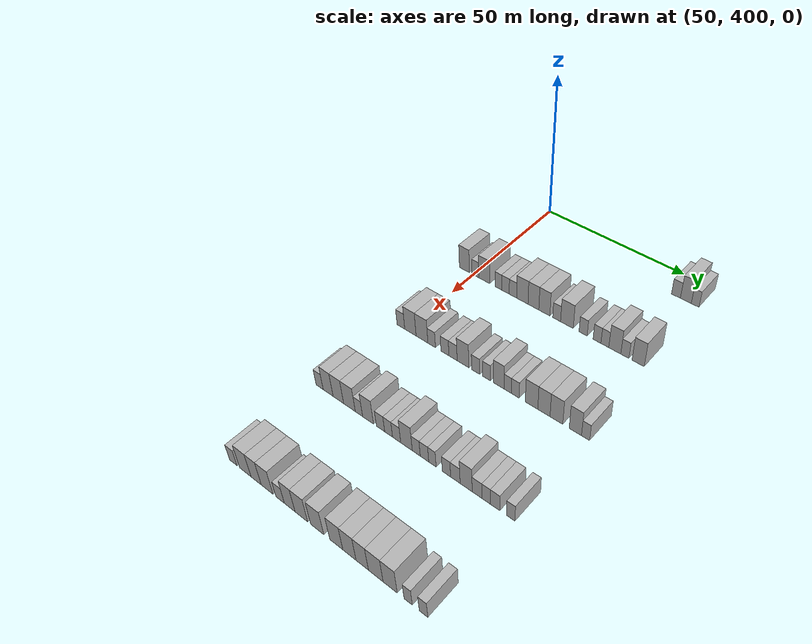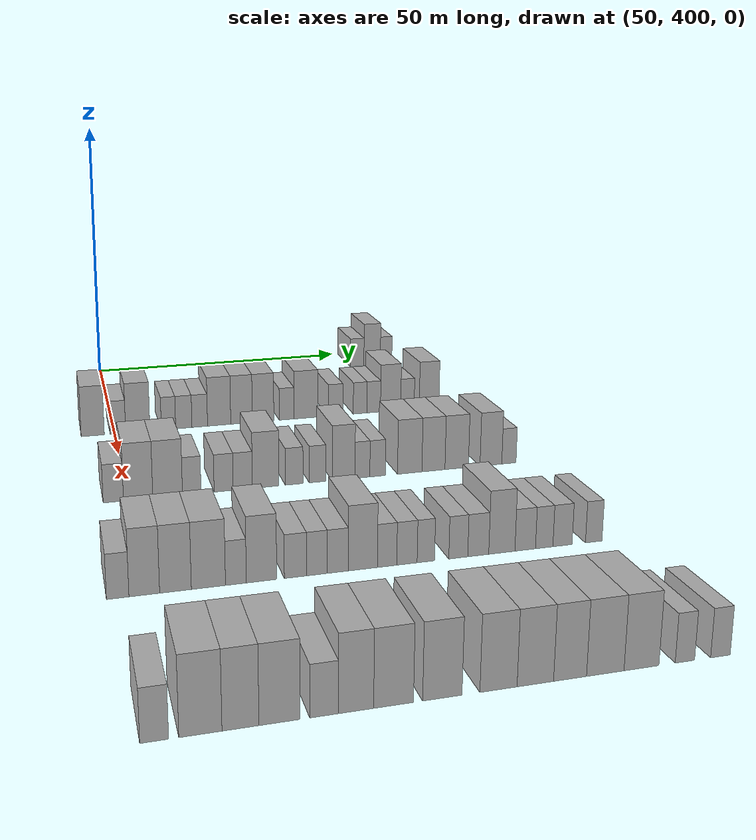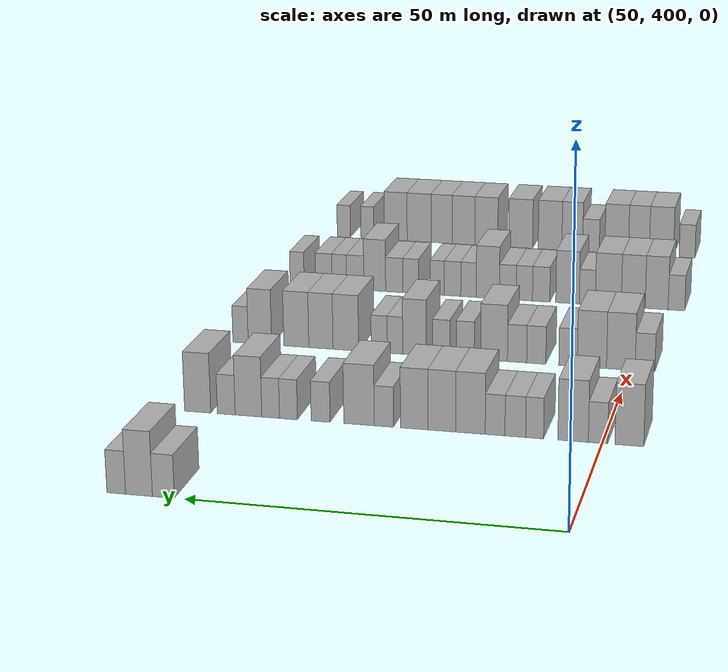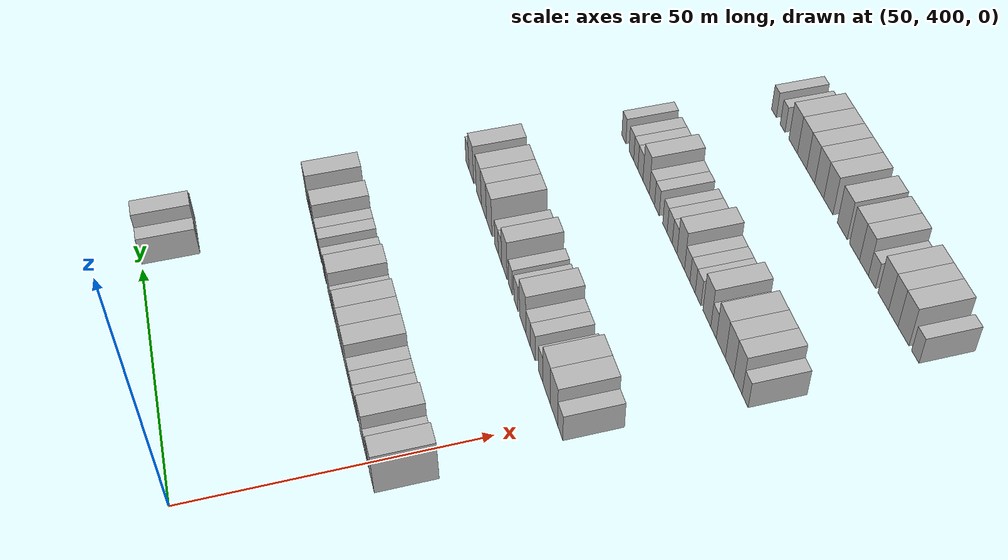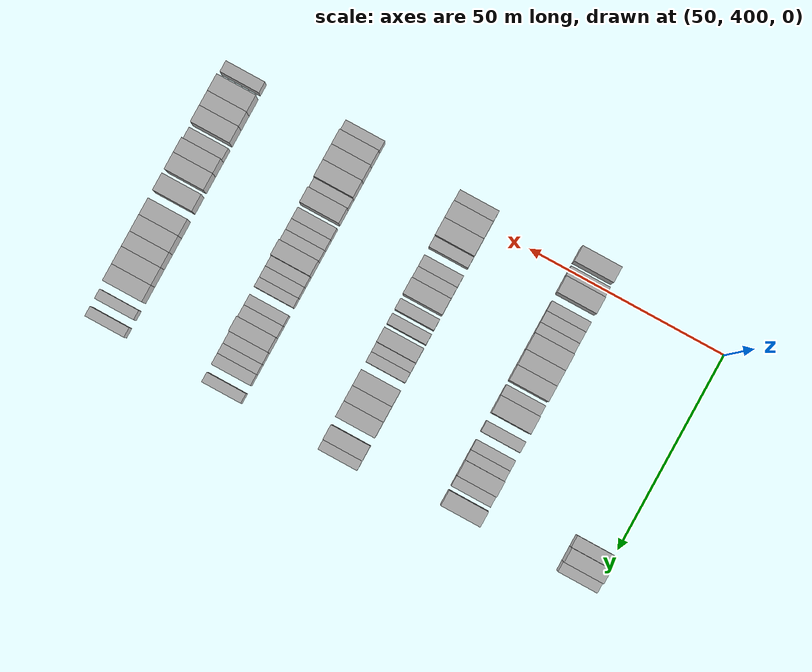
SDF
<sdf version="1.6">
 <world name="default">
  <model name="building_455">
   <static>1</static>
   <pose>55.0000 452.8840 0 0.000000 0.000000 0.000000</pose>
   <link name="link">
    <pose>0 0 3.00 0 0 0</pose>
    <collision name="collision"><geometry><box><size>10.0000 2.9763 6.0000</size></box></geometry></collision>
    <visual name="visual">
     <cast_shadows>0</cast_shadows>
     <geometry><box><size>10.0000 2.9763 6.0000</size></box></geometry>
     <material>
      <script>
       <uri>model://HANNAS_wall/materials/scripts</uri>
       <uri>model://HANNAS_wall/materials/textures</uri>
       <name>vrc/HANNAS_wall</name>
      </script>
     </material>
    </visual>
   </link>
  </model>
  <model name="building_456">
   <static>1</static>
   <pose>55.0000 456.1974 0 0.000000 0.000000 0.000000</pose>
   <link name="link">
    <pose>0 0 4.50 0 0 0</pose>
    <collision name="collision"><geometry><box><size>10.0000 3.6505 9.0000</size></box></geometry></collision>
    <visual name="visual">
     <cast_shadows>0</cast_shadows>
     <geometry><box><size>10.0000 3.6505 9.0000</size></box></geometry>
     <material>
      <script>
       <uri>model://HANNAS_wall/materials/scripts</uri>
       <uri>model://HANNAS_wall/materials/textures</uri>
       <name>vrc/HANNAS_wall</name>
      </script>
     </material>
    </visual>
   </link>
  </model>
  <model name="building_457">
   <static>1</static>
   <pose>55.0000 459.3004 0 0.000000 0.000000 0.000000</pose>
   <link name="link">
    <pose>0 0 3.00 0 0 0</pose>
    <collision name="collision"><geometry><box><size>10.0000 2.5554 6.0000</size></box></geometry></collision>
    <visual name="visual">
     <cast_shadows>0</cast_shadows>
     <geometry><box><size>10.0000 2.5554 6.0000</size></box></geometry>
     <material>
      <script>
       <uri>model://HANNAS_wall/materials/scripts</uri>
       <uri>model://HANNAS_wall/materials/textures</uri>
       <name>vrc/HANNAS_wall</name>
      </script>
     </material>
    </visual>
   </link>
  </model>
  <model name="building_666">
   <static>1</static>
   <pose>85.0000 396.3126 0 0.000000 0.000000 0.000000</pose>
   <link name="link">
    <pose>0 0 4.50 0 0 0</pose>
    <collision name="collision"><geometry><box><size>10.0000 3.9730 9.0000</size></box></geometry></collision>
    <visual name="visual">
     <cast_shadows>0</cast_shadows>
     <geometry><box><size>10.0000 3.9730 9.0000</size></box></geometry>
     <material>
      <script>
       <uri>model://HANNAS_wall/materials/scripts</uri>
       <uri>model://HANNAS_wall/materials/textures</uri>
       <name>vrc/HANNAS_wall</name>
      </script>
     </material>
    </visual>
   </link>
  </model>
  <model name="building_667">
   <static>1</static>
   <pose>85.0000 400.6396 0 0.000000 0.000000 0.000000</pose>
   <link name="link">
    <pose>0 0 3.00 0 0 0</pose>
    <collision name="collision"><geometry><box><size>10.0000 2.6809 6.0000</size></box></geometry></collision>
    <visual name="visual">
     <cast_shadows>0</cast_shadows>
     <geometry><box><size>10.0000 2.6809 6.0000</size></box></geometry>
     <material>
      <script>
       <uri>model://HANNAS_wall/materials/scripts</uri>
       <uri>model://HANNAS_wall/materials/textures</uri>
       <name>vrc/HANNAS_wall</name>
      </script>
     </material>
    </visual>
   </link>
  </model>
  <model name="building_668">
   <static>1</static>
   <pose>85.0000 404.0956 0 0.000000 0.000000 0.000000</pose>
   <link name="link">
    <pose>0 0 4.50 0 0 0</pose>
    <collision name="collision"><geometry><box><size>10.0000 4.2312 9.0000</size></box></geometry></collision>
    <visual name="visual">
     <cast_shadows>0</cast_shadows>
     <geometry><box><size>10.0000 4.2312 9.0000</size></box></geometry>
     <material>
      <script>
       <uri>model://HANNAS_wall/materials/scripts</uri>
       <uri>model://HANNAS_wall/materials/textures</uri>
       <name>vrc/HANNAS_wall</name>
      </script>
     </material>
    </visual>
   </link>
  </model>
  <model name="building_669">
   <static>1</static>
   <pose>85.0000 409.4728 0 0.000000 0.000000 0.000000</pose>
   <link name="link">
    <pose>0 0 3.00 0 0 0</pose>
    <collision name="collision"><geometry><box><size>10.0000 2.5232 6.0000</size></box></geometry></collision>
    <visual name="visual">
     <cast_shadows>0</cast_shadows>
     <geometry><box><size>10.0000 2.5232 6.0000</size></box></geometry>
     <material>
      <script>
       <uri>model://HANNAS_wall/materials/scripts</uri>
       <uri>model://HANNAS_wall/materials/textures</uri>
       <name>vrc/HANNAS_wall</name>
      </script>
     </material>
    </visual>
   </link>
  </model>
  <model name="building_670">
   <static>1</static>
   <pose>85.0000 412.1838 0 0.000000 0.000000 0.000000</pose>
   <link name="link">
    <pose>0 0 3.00 0 0 0</pose>
    <collision name="collision"><geometry><box><size>10.0000 2.8987 6.0000</size></box></geometry></collision>
    <visual name="visual">
     <cast_shadows>0</cast_shadows>
     <geometry><box><size>10.0000 2.8987 6.0000</size></box></geometry>
     <material>
      <script>
       <uri>model://HANNAS_wall/materials/scripts</uri>
       <uri>model://HANNAS_wall/materials/textures</uri>
       <name>vrc/HANNAS_wall</name>
      </script>
     </material>
    </visual>
   </link>
  </model>
  <model name="building_671">
   <static>1</static>
   <pose>85.0000 415.0270 0 0.000000 0.000000 0.000000</pose>
   <link name="link">
    <pose>0 0 3.00 0 0 0</pose>
    <collision name="collision"><geometry><box><size>10.0000 2.7877 6.0000</size></box></geometry></collision>
    <visual name="visual">
     <cast_shadows>0</cast_shadows>
     <geometry><box><size>10.0000 2.7877 6.0000</size></box></geometry>
     <material>
      <script>
       <uri>model://HANNAS_wall/materials/scripts</uri>
       <uri>model://HANNAS_wall/materials/textures</uri>
       <name>vrc/HANNAS_wall</name>
      </script>
     </material>
    </visual>
   </link>
  </model>
  <model name="building_672">
   <static>1</static>
   <pose>85.0000 418.5175 0 0.000000 0.000000 0.000000</pose>
   <link name="link">
    <pose>0 0 4.50 0 0 0</pose>
    <collision name="collision"><geometry><box><size>10.0000 4.1933 9.0000</size></box></geometry></collision>
    <visual name="visual">
     <cast_shadows>0</cast_shadows>
     <geometry><box><size>10.0000 4.1933 9.0000</size></box></geometry>
     <material>
      <script>
       <uri>model://HANNAS_wall/materials/scripts</uri>
       <uri>model://HANNAS_wall/materials/textures</uri>
       <name>vrc/HANNAS_wall</name>
      </script>
     </material>
    </visual>
   </link>
  </model>
  <model name="building_673">
   <static>1</static>
   <pose>85.0000 422.5801 0 0.000000 0.000000 0.000000</pose>
   <link name="link">
    <pose>0 0 4.50 0 0 0</pose>
    <collision name="collision"><geometry><box><size>10.0000 3.9321 9.0000</size></box></geometry></collision>
    <visual name="visual">
     <cast_shadows>0</cast_shadows>
     <geometry><box><size>10.0000 3.9321 9.0000</size></box></geometry>
     <material>
      <script>
       <uri>model://HANNAS_wall/materials/scripts</uri>
       <uri>model://HANNAS_wall/materials/textures</uri>
       <name>vrc/HANNAS_wall</name>
      </script>
     </material>
    </visual>
   </link>
  </model>
  <model name="building_674">
   <static>1</static>
   <pose>85.0000 426.5261 0 0.000000 0.000000 0.000000</pose>
   <link name="link">
    <pose>0 0 4.50 0 0 0</pose>
    <collision name="collision"><geometry><box><size>10.0000 3.9597 9.0000</size></box></geometry></collision>
    <visual name="visual">
     <cast_shadows>0</cast_shadows>
     <geometry><box><size>10.0000 3.9597 9.0000</size></box></geometry>
     <material>
      <script>
       <uri>model://HANNAS_wall/materials/scripts</uri>
       <uri>model://HANNAS_wall/materials/textures</uri>
       <name>vrc/HANNAS_wall</name>
      </script>
     </material>
    </visual>
   </link>
  </model>
  <model name="building_675">
   <static>1</static>
   <pose>85.0000 430.8857 0 0.000000 0.000000 0.000000</pose>
   <link name="link">
    <pose>0 0 3.00 0 0 0</pose>
    <collision name="collision"><geometry><box><size>10.0000 2.7595 6.0000</size></box></geometry></collision>
    <visual name="visual">
     <cast_shadows>0</cast_shadows>
     <geometry><box><size>10.0000 2.7595 6.0000</size></box></geometry>
     <material>
      <script>
       <uri>model://HANNAS_wall/materials/scripts</uri>
       <uri>model://HANNAS_wall/materials/textures</uri>
       <name>vrc/HANNAS_wall</name>
      </script>
     </material>
    </visual>
   </link>
  </model>
  <model name="building_676">
   <static>1</static>
   <pose>85.0000 434.4790 0 0.000000 0.000000 0.000000</pose>
   <link name="link">
    <pose>0 0 4.50 0 0 0</pose>
    <collision name="collision"><geometry><box><size>10.0000 4.4272 9.0000</size></box></geometry></collision>
    <visual name="visual">
     <cast_shadows>0</cast_shadows>
     <geometry><box><size>10.0000 4.4272 9.0000</size></box></geometry>
     <material>
      <script>
       <uri>model://HANNAS_wall/materials/scripts</uri>
       <uri>model://HANNAS_wall/materials/textures</uri>
       <name>vrc/HANNAS_wall</name>
      </script>
     </material>
    </visual>
   </link>
  </model>
  <model name="building_677">
   <static>1</static>
   <pose>85.0000 440.0738 0 0.000000 0.000000 0.000000</pose>
   <link name="link">
    <pose>0 0 3.00 0 0 0</pose>
    <collision name="collision"><geometry><box><size>10.0000 2.7624 6.0000</size></box></geometry></collision>
    <visual name="visual">
     <cast_shadows>0</cast_shadows>
     <geometry><box><size>10.0000 2.7624 6.0000</size></box></geometry>
     <material>
      <script>
       <uri>model://HANNAS_wall/materials/scripts</uri>
       <uri>model://HANNAS_wall/materials/textures</uri>
       <name>vrc/HANNAS_wall</name>
      </script>
     </material>
    </visual>
   </link>
  </model>
  <model name="building_678">
   <static>1</static>
   <pose>85.0000 444.7727 0 0.000000 0.000000 0.000000</pose>
   <link name="link">
    <pose>0 0 3.00 0 0 0</pose>
    <collision name="collision"><geometry><box><size>10.0000 2.6354 6.0000</size></box></geometry></collision>
    <visual name="visual">
     <cast_shadows>0</cast_shadows>
     <geometry><box><size>10.0000 2.6354 6.0000</size></box></geometry>
     <material>
      <script>
       <uri>model://HANNAS_wall/materials/scripts</uri>
       <uri>model://HANNAS_wall/materials/textures</uri>
       <name>vrc/HANNAS_wall</name>
      </script>
     </material>
    </visual>
   </link>
  </model>
  <model name="building_679">
   <static>1</static>
   <pose>85.0000 447.3933 0 0.000000 0.000000 0.000000</pose>
   <link name="link">
    <pose>0 0 3.00 0 0 0</pose>
    <collision name="collision"><geometry><box><size>10.0000 2.6059 6.0000</size></box></geometry></collision>
    <visual name="visual">
     <cast_shadows>0</cast_shadows>
     <geometry><box><size>10.0000 2.6059 6.0000</size></box></geometry>
     <material>
      <script>
       <uri>model://HANNAS_wall/materials/scripts</uri>
       <uri>model://HANNAS_wall/materials/textures</uri>
       <name>vrc/HANNAS_wall</name>
      </script>
     </material>
    </visual>
   </link>
  </model>
  <model name="building_680">
   <static>1</static>
   <pose>85.0000 450.6686 0 0.000000 0.000000 0.000000</pose>
   <link name="link">
    <pose>0 0 4.50 0 0 0</pose>
    <collision name="collision"><geometry><box><size>10.0000 3.9449 9.0000</size></box></geometry></collision>
    <visual name="visual">
     <cast_shadows>0</cast_shadows>
     <geometry><box><size>10.0000 3.9449 9.0000</size></box></geometry>
     <material>
      <script>
       <uri>model://HANNAS_wall/materials/scripts</uri>
       <uri>model://HANNAS_wall/materials/textures</uri>
       <name>vrc/HANNAS_wall</name>
      </script>
     </material>
    </visual>
   </link>
  </model>
  <model name="building_681">
   <static>1</static>
   <pose>85.0000 453.9613 0 0.000000 0.000000 0.000000</pose>
   <link name="link">
    <pose>0 0 3.00 0 0 0</pose>
    <collision name="collision"><geometry><box><size>10.0000 2.6404 6.0000</size></box></geometry></collision>
    <visual name="visual">
     <cast_shadows>0</cast_shadows>
     <geometry><box><size>10.0000 2.6404 6.0000</size></box></geometry>
     <material>
      <script>
       <uri>model://HANNAS_wall/materials/scripts</uri>
       <uri>model://HANNAS_wall/materials/textures</uri>
       <name>vrc/HANNAS_wall</name>
      </script>
     </material>
    </visual>
   </link>
  </model>
  <model name="building_682">
   <static>1</static>
   <pose>85.0000 458.2292 0 0.000000 0.000000 0.000000</pose>
   <link name="link">
    <pose>0 0 4.50 0 0 0</pose>
    <collision name="collision"><geometry><box><size>10.0000 3.8955 9.0000</size></box></geometry></collision>
    <visual name="visual">
     <cast_shadows>0</cast_shadows>
     <geometry><box><size>10.0000 3.8955 9.0000</size></box></geometry>
     <material>
      <script>
       <uri>model://HANNAS_wall/materials/scripts</uri>
       <uri>model://HANNAS_wall/materials/textures</uri>
       <name>vrc/HANNAS_wall</name>
      </script>
     </material>
    </visual>
   </link>
  </model>
  <model name="building_903">
   <static>1</static>
   <pose>115.0000 397.7555 0 0.000000 0.000000 0.000000</pose>
   <link name="link">
    <pose>0 0 3.00 0 0 0</pose>
    <collision name="collision"><geometry><box><size>10.0000 2.9889 6.0000</size></box></geometry></collision>
    <visual name="visual">
     <cast_shadows>0</cast_shadows>
     <geometry><box><size>10.0000 2.9889 6.0000</size></box></geometry>
     <material>
      <script>
       <uri>model://HANNAS_wall/materials/scripts</uri>
       <uri>model://HANNAS_wall/materials/textures</uri>
       <name>vrc/HANNAS_wall</name>
      </script>
     </material>
    </visual>
   </link>
  </model>
  <model name="building_904">
   <static>1</static>
   <pose>115.0000 401.4239 0 0.000000 0.000000 0.000000</pose>
   <link name="link">
    <pose>0 0 4.50 0 0 0</pose>
    <collision name="collision"><geometry><box><size>10.0000 4.3480 9.0000</size></box></geometry></collision>
    <visual name="visual">
     <cast_shadows>0</cast_shadows>
     <geometry><box><size>10.0000 4.3480 9.0000</size></box></geometry>
     <material>
      <script>
       <uri>model://HANNAS_wall/materials/scripts</uri>
       <uri>model://HANNAS_wall/materials/textures</uri>
       <name>vrc/HANNAS_wall</name>
      </script>
     </material>
    </visual>
   </link>
  </model>
  <model name="building_905">
   <static>1</static>
   <pose>115.0000 405.8273 0 0.000000 0.000000 0.000000</pose>
   <link name="link">
    <pose>0 0 4.50 0 0 0</pose>
    <collision name="collision"><geometry><box><size>10.0000 4.4589 9.0000</size></box></geometry></collision>
    <visual name="visual">
     <cast_shadows>0</cast_shadows>
     <geometry><box><size>10.0000 4.4589 9.0000</size></box></geometry>
     <material>
      <script>
       <uri>model://HANNAS_wall/materials/scripts</uri>
       <uri>model://HANNAS_wall/materials/textures</uri>
       <name>vrc/HANNAS_wall</name>
      </script>
     </material>
    </visual>
   </link>
  </model>
  <model name="building_906">
   <static>1</static>
   <pose>115.0000 409.4666 0 0.000000 0.000000 0.000000</pose>
   <link name="link">
    <pose>0 0 3.00 0 0 0</pose>
    <collision name="collision"><geometry><box><size>10.0000 2.8197 6.0000</size></box></geometry></collision>
    <visual name="visual">
     <cast_shadows>0</cast_shadows>
     <geometry><box><size>10.0000 2.8197 6.0000</size></box></geometry>
     <material>
      <script>
       <uri>model://HANNAS_wall/materials/scripts</uri>
       <uri>model://HANNAS_wall/materials/textures</uri>
       <name>vrc/HANNAS_wall</name>
      </script>
     </material>
    </visual>
   </link>
  </model>
  <model name="building_907">
   <static>1</static>
   <pose>115.0000 414.3452 0 0.000000 0.000000 0.000000</pose>
   <link name="link">
    <pose>0 0 3.00 0 0 0</pose>
    <collision name="collision"><geometry><box><size>10.0000 2.9374 6.0000</size></box></geometry></collision>
    <visual name="visual">
     <cast_shadows>0</cast_shadows>
     <geometry><box><size>10.0000 2.9374 6.0000</size></box></geometry>
     <material>
      <script>
       <uri>model://HANNAS_wall/materials/scripts</uri>
       <uri>model://HANNAS_wall/materials/textures</uri>
       <name>vrc/HANNAS_wall</name>
      </script>
     </material>
    </visual>
   </link>
  </model>
  <model name="building_908">
   <static>1</static>
   <pose>115.0000 417.3029 0 0.000000 0.000000 0.000000</pose>
   <link name="link">
    <pose>0 0 3.00 0 0 0</pose>
    <collision name="collision"><geometry><box><size>10.0000 2.9780 6.0000</size></box></geometry></collision>
    <visual name="visual">
     <cast_shadows>0</cast_shadows>
     <geometry><box><size>10.0000 2.9780 6.0000</size></box></geometry>
     <material>
      <script>
       <uri>model://HANNAS_wall/materials/scripts</uri>
       <uri>model://HANNAS_wall/materials/textures</uri>
       <name>vrc/HANNAS_wall</name>
      </script>
     </material>
    </visual>
   </link>
  </model>
  <model name="building_909">
   <static>1</static>
   <pose>115.0000 420.8757 0 0.000000 0.000000 0.000000</pose>
   <link name="link">
    <pose>0 0 4.50 0 0 0</pose>
    <collision name="collision"><geometry><box><size>10.0000 4.1677 9.0000</size></box></geometry></collision>
    <visual name="visual">
     <cast_shadows>0</cast_shadows>
     <geometry><box><size>10.0000 4.1677 9.0000</size></box></geometry>
     <material>
      <script>
       <uri>model://HANNAS_wall/materials/scripts</uri>
       <uri>model://HANNAS_wall/materials/textures</uri>
       <name>vrc/HANNAS_wall</name>
      </script>
     </material>
    </visual>
   </link>
  </model>
  <model name="building_910">
   <static>1</static>
   <pose>115.0000 425.3671 0 0.000000 0.000000 0.000000</pose>
   <link name="link">
    <pose>0 0 3.00 0 0 0</pose>
    <collision name="collision"><geometry><box><size>10.0000 2.8151 6.0000</size></box></geometry></collision>
    <visual name="visual">
     <cast_shadows>0</cast_shadows>
     <geometry><box><size>10.0000 2.8151 6.0000</size></box></geometry>
     <material>
      <script>
       <uri>model://HANNAS_wall/materials/scripts</uri>
       <uri>model://HANNAS_wall/materials/textures</uri>
       <name>vrc/HANNAS_wall</name>
      </script>
     </material>
    </visual>
   </link>
  </model>
  <model name="building_911">
   <static>1</static>
   <pose>115.0000 429.1110 0 0.000000 0.000000 0.000000</pose>
   <link name="link">
    <pose>0 0 3.00 0 0 0</pose>
    <collision name="collision"><geometry><box><size>10.0000 2.6728 6.0000</size></box></geometry></collision>
    <visual name="visual">
     <cast_shadows>0</cast_shadows>
     <geometry><box><size>10.0000 2.6728 6.0000</size></box></geometry>
     <material>
      <script>
       <uri>model://HANNAS_wall/materials/scripts</uri>
       <uri>model://HANNAS_wall/materials/textures</uri>
       <name>vrc/HANNAS_wall</name>
      </script>
     </material>
    </visual>
   </link>
  </model>
  <model name="building_912">
   <static>1</static>
   <pose>115.0000 433.3082 0 0.000000 0.000000 0.000000</pose>
   <link name="link">
    <pose>0 0 4.50 0 0 0</pose>
    <collision name="collision"><geometry><box><size>10.0000 3.7215 9.0000</size></box></geometry></collision>
    <visual name="visual">
     <cast_shadows>0</cast_shadows>
     <geometry><box><size>10.0000 3.7215 9.0000</size></box></geometry>
     <material>
      <script>
       <uri>model://HANNAS_wall/materials/scripts</uri>
       <uri>model://HANNAS_wall/materials/textures</uri>
       <name>vrc/HANNAS_wall</name>
      </script>
     </material>
    </visual>
   </link>
  </model>
  <model name="building_913">
   <static>1</static>
   <pose>115.0000 436.3784 0 0.000000 0.000000 0.000000</pose>
   <link name="link">
    <pose>0 0 3.00 0 0 0</pose>
    <collision name="collision"><geometry><box><size>10.0000 2.4189 6.0000</size></box></geometry></collision>
    <visual name="visual">
     <cast_shadows>0</cast_shadows>
     <geometry><box><size>10.0000 2.4189 6.0000</size></box></geometry>
     <material>
      <script>
       <uri>model://HANNAS_wall/materials/scripts</uri>
       <uri>model://HANNAS_wall/materials/textures</uri>
       <name>vrc/HANNAS_wall</name>
      </script>
     </material>
    </visual>
   </link>
  </model>
  <model name="building_914">
   <static>1</static>
   <pose>115.0000 438.8749 0 0.000000 0.000000 0.000000</pose>
   <link name="link">
    <pose>0 0 3.00 0 0 0</pose>
    <collision name="collision"><geometry><box><size>10.0000 2.5742 6.0000</size></box></geometry></collision>
    <visual name="visual">
     <cast_shadows>0</cast_shadows>
     <geometry><box><size>10.0000 2.5742 6.0000</size></box></geometry>
     <material>
      <script>
       <uri>model://HANNAS_wall/materials/scripts</uri>
       <uri>model://HANNAS_wall/materials/textures</uri>
       <name>vrc/HANNAS_wall</name>
      </script>
     </material>
    </visual>
   </link>
  </model>
  <model name="building_915">
   <static>1</static>
   <pose>115.0000 444.2015 0 0.000000 0.000000 0.000000</pose>
   <link name="link">
    <pose>0 0 4.50 0 0 0</pose>
    <collision name="collision"><geometry><box><size>10.0000 4.0790 9.0000</size></box></geometry></collision>
    <visual name="visual">
     <cast_shadows>0</cast_shadows>
     <geometry><box><size>10.0000 4.0790 9.0000</size></box></geometry>
     <material>
      <script>
       <uri>model://HANNAS_wall/materials/scripts</uri>
       <uri>model://HANNAS_wall/materials/textures</uri>
       <name>vrc/HANNAS_wall</name>
      </script>
     </material>
    </visual>
   </link>
  </model>
  <model name="building_916">
   <static>1</static>
   <pose>115.0000 448.1907 0 0.000000 0.000000 0.000000</pose>
   <link name="link">
    <pose>0 0 4.50 0 0 0</pose>
    <collision name="collision"><geometry><box><size>10.0000 3.8994 9.0000</size></box></geometry></collision>
    <visual name="visual">
     <cast_shadows>0</cast_shadows>
     <geometry><box><size>10.0000 3.8994 9.0000</size></box></geometry>
     <material>
      <script>
       <uri>model://HANNAS_wall/materials/scripts</uri>
       <uri>model://HANNAS_wall/materials/textures</uri>
       <name>vrc/HANNAS_wall</name>
      </script>
     </material>
    </visual>
   </link>
  </model>
  <model name="building_917">
   <static>1</static>
   <pose>115.0000 452.1429 0 0.000000 0.000000 0.000000</pose>
   <link name="link">
    <pose>0 0 4.50 0 0 0</pose>
    <collision name="collision"><geometry><box><size>10.0000 4.0049 9.0000</size></box></geometry></collision>
    <visual name="visual">
     <cast_shadows>0</cast_shadows>
     <geometry><box><size>10.0000 4.0049 9.0000</size></box></geometry>
     <material>
      <script>
       <uri>model://HANNAS_wall/materials/scripts</uri>
       <uri>model://HANNAS_wall/materials/textures</uri>
       <name>vrc/HANNAS_wall</name>
      </script>
     </material>
    </visual>
   </link>
  </model>
  <model name="building_918">
   <static>1</static>
   <pose>115.0000 458.0374 0 0.000000 0.000000 0.000000</pose>
   <link name="link">
    <pose>0 0 4.50 0 0 0</pose>
    <collision name="collision"><geometry><box><size>10.0000 3.7840 9.0000</size></box></geometry></collision>
    <visual name="visual">
     <cast_shadows>0</cast_shadows>
     <geometry><box><size>10.0000 3.7840 9.0000</size></box></geometry>
     <material>
      <script>
       <uri>model://HANNAS_wall/materials/scripts</uri>
       <uri>model://HANNAS_wall/materials/textures</uri>
       <name>vrc/HANNAS_wall</name>
      </script>
     </material>
    </visual>
   </link>
  </model>
  <model name="building_919">
   <static>1</static>
   <pose>115.0000 461.1777 0 0.000000 0.000000 0.000000</pose>
   <link name="link">
    <pose>0 0 3.00 0 0 0</pose>
    <collision name="collision"><geometry><box><size>10.0000 2.4967 6.0000</size></box></geometry></collision>
    <visual name="visual">
     <cast_shadows>0</cast_shadows>
     <geometry><box><size>10.0000 2.4967 6.0000</size></box></geometry>
     <material>
      <script>
       <uri>model://HANNAS_wall/materials/scripts</uri>
       <uri>model://HANNAS_wall/materials/textures</uri>
       <name>vrc/HANNAS_wall</name>
      </script>
     </material>
    </visual>
   </link>
  </model>
  <model name="building_1120">
   <static>1</static>
   <pose>145.0000 396.1927 0 0.000000 0.000000 0.000000</pose>
   <link name="link">
    <pose>0 0 3.00 0 0 0</pose>
    <collision name="collision"><geometry><box><size>10.0000 2.7344 6.0000</size></box></geometry></collision>
    <visual name="visual">
     <cast_shadows>0</cast_shadows>
     <geometry><box><size>10.0000 2.7344 6.0000</size></box></geometry>
     <material>
      <script>
       <uri>model://HANNAS_wall/materials/scripts</uri>
       <uri>model://HANNAS_wall/materials/textures</uri>
       <name>vrc/HANNAS_wall</name>
      </script>
     </material>
    </visual>
   </link>
  </model>
  <model name="building_1121">
   <static>1</static>
   <pose>145.0000 399.4441 0 0.000000 0.000000 0.000000</pose>
   <link name="link">
    <pose>0 0 4.50 0 0 0</pose>
    <collision name="collision"><geometry><box><size>10.0000 3.7683 9.0000</size></box></geometry></collision>
    <visual name="visual">
     <cast_shadows>0</cast_shadows>
     <geometry><box><size>10.0000 3.7683 9.0000</size></box></geometry>
     <material>
      <script>
       <uri>model://HANNAS_wall/materials/scripts</uri>
       <uri>model://HANNAS_wall/materials/textures</uri>
       <name>vrc/HANNAS_wall</name>
      </script>
     </material>
    </visual>
   </link>
  </model>
  <model name="building_1122">
   <static>1</static>
   <pose>145.0000 403.3025 0 0.000000 0.000000 0.000000</pose>
   <link name="link">
    <pose>0 0 4.50 0 0 0</pose>
    <collision name="collision"><geometry><box><size>10.0000 3.9485 9.0000</size></box></geometry></collision>
    <visual name="visual">
     <cast_shadows>0</cast_shadows>
     <geometry><box><size>10.0000 3.9485 9.0000</size></box></geometry>
     <material>
      <script>
       <uri>model://HANNAS_wall/materials/scripts</uri>
       <uri>model://HANNAS_wall/materials/textures</uri>
       <name>vrc/HANNAS_wall</name>
      </script>
     </material>
    </visual>
   </link>
  </model>
  <model name="building_1123">
   <static>1</static>
   <pose>145.0000 407.4304 0 0.000000 0.000000 0.000000</pose>
   <link name="link">
    <pose>0 0 4.50 0 0 0</pose>
    <collision name="collision"><geometry><box><size>10.0000 4.3072 9.0000</size></box></geometry></collision>
    <visual name="visual">
     <cast_shadows>0</cast_shadows>
     <geometry><box><size>10.0000 4.3072 9.0000</size></box></geometry>
     <material>
      <script>
       <uri>model://HANNAS_wall/materials/scripts</uri>
       <uri>model://HANNAS_wall/materials/textures</uri>
       <name>vrc/HANNAS_wall</name>
      </script>
     </material>
    </visual>
   </link>
  </model>
  <model name="building_1124">
   <static>1</static>
   <pose>145.0000 410.9167 0 0.000000 0.000000 0.000000</pose>
   <link name="link">
    <pose>0 0 3.00 0 0 0</pose>
    <collision name="collision"><geometry><box><size>10.0000 2.6654 6.0000</size></box></geometry></collision>
    <visual name="visual">
     <cast_shadows>0</cast_shadows>
     <geometry><box><size>10.0000 2.6654 6.0000</size></box></geometry>
     <material>
      <script>
       <uri>model://HANNAS_wall/materials/scripts</uri>
       <uri>model://HANNAS_wall/materials/textures</uri>
       <name>vrc/HANNAS_wall</name>
      </script>
     </material>
    </visual>
   </link>
  </model>
  <model name="building_1125">
   <static>1</static>
   <pose>145.0000 414.2074 0 0.000000 0.000000 0.000000</pose>
   <link name="link">
    <pose>0 0 4.50 0 0 0</pose>
    <collision name="collision"><geometry><box><size>10.0000 3.9159 9.0000</size></box></geometry></collision>
    <visual name="visual">
     <cast_shadows>0</cast_shadows>
     <geometry><box><size>10.0000 3.9159 9.0000</size></box></geometry>
     <material>
      <script>
       <uri>model://HANNAS_wall/materials/scripts</uri>
       <uri>model://HANNAS_wall/materials/textures</uri>
       <name>vrc/HANNAS_wall</name>
      </script>
     </material>
    </visual>
   </link>
  </model>
  <model name="building_1126">
   <static>1</static>
   <pose>145.0000 418.6219 0 0.000000 0.000000 0.000000</pose>
   <link name="link">
    <pose>0 0 3.00 0 0 0</pose>
    <collision name="collision"><geometry><box><size>10.0000 2.9131 6.0000</size></box></geometry></collision>
    <visual name="visual">
     <cast_shadows>0</cast_shadows>
     <geometry><box><size>10.0000 2.9131 6.0000</size></box></geometry>
     <material>
      <script>
       <uri>model://HANNAS_wall/materials/scripts</uri>
       <uri>model://HANNAS_wall/materials/textures</uri>
       <name>vrc/HANNAS_wall</name>
      </script>
     </material>
    </visual>
   </link>
  </model>
  <model name="building_1127">
   <static>1</static>
   <pose>145.0000 421.4508 0 0.000000 0.000000 0.000000</pose>
   <link name="link">
    <pose>0 0 3.00 0 0 0</pose>
    <collision name="collision"><geometry><box><size>10.0000 2.7447 6.0000</size></box></geometry></collision>
    <visual name="visual">
     <cast_shadows>0</cast_shadows>
     <geometry><box><size>10.0000 2.7447 6.0000</size></box></geometry>
     <material>
      <script>
       <uri>model://HANNAS_wall/materials/scripts</uri>
       <uri>model://HANNAS_wall/materials/textures</uri>
       <name>vrc/HANNAS_wall</name>
      </script>
     </material>
    </visual>
   </link>
  </model>
  <model name="building_1128">
   <static>1</static>
   <pose>145.0000 424.2250 0 0.000000 0.000000 0.000000</pose>
   <link name="link">
    <pose>0 0 3.00 0 0 0</pose>
    <collision name="collision"><geometry><box><size>10.0000 2.8036 6.0000</size></box></geometry></collision>
    <visual name="visual">
     <cast_shadows>0</cast_shadows>
     <geometry><box><size>10.0000 2.8036 6.0000</size></box></geometry>
     <material>
      <script>
       <uri>model://HANNAS_wall/materials/scripts</uri>
       <uri>model://HANNAS_wall/materials/textures</uri>
       <name>vrc/HANNAS_wall</name>
      </script>
     </material>
    </visual>
   </link>
  </model>
  <model name="building_1129">
   <static>1</static>
   <pose>145.0000 427.5907 0 0.000000 0.000000 0.000000</pose>
   <link name="link">
    <pose>0 0 4.50 0 0 0</pose>
    <collision name="collision"><geometry><box><size>10.0000 3.9279 9.0000</size></box></geometry></collision>
    <visual name="visual">
     <cast_shadows>0</cast_shadows>
     <geometry><box><size>10.0000 3.9279 9.0000</size></box></geometry>
     <material>
      <script>
       <uri>model://HANNAS_wall/materials/scripts</uri>
       <uri>model://HANNAS_wall/materials/textures</uri>
       <name>vrc/HANNAS_wall</name>
      </script>
     </material>
    </visual>
   </link>
  </model>
  <model name="building_1130">
   <static>1</static>
   <pose>145.0000 430.8809 0 0.000000 0.000000 0.000000</pose>
   <link name="link">
    <pose>0 0 3.00 0 0 0</pose>
    <collision name="collision"><geometry><box><size>10.0000 2.6524 6.0000</size></box></geometry></collision>
    <visual name="visual">
     <cast_shadows>0</cast_shadows>
     <geometry><box><size>10.0000 2.6524 6.0000</size></box></geometry>
     <material>
      <script>
       <uri>model://HANNAS_wall/materials/scripts</uri>
       <uri>model://HANNAS_wall/materials/textures</uri>
       <name>vrc/HANNAS_wall</name>
      </script>
     </material>
    </visual>
   </link>
  </model>
  <model name="building_1131">
   <static>1</static>
   <pose>145.0000 433.6108 0 0.000000 0.000000 0.000000</pose>
   <link name="link">
    <pose>0 0 3.00 0 0 0</pose>
    <collision name="collision"><geometry><box><size>10.0000 2.8074 6.0000</size></box></geometry></collision>
    <visual name="visual">
     <cast_shadows>0</cast_shadows>
     <geometry><box><size>10.0000 2.8074 6.0000</size></box></geometry>
     <material>
      <script>
       <uri>model://HANNAS_wall/materials/scripts</uri>
       <uri>model://HANNAS_wall/materials/textures</uri>
       <name>vrc/HANNAS_wall</name>
      </script>
     </material>
    </visual>
   </link>
  </model>
  <model name="building_1132">
   <static>1</static>
   <pose>145.0000 436.2256 0 0.000000 0.000000 0.000000</pose>
   <link name="link">
    <pose>0 0 3.00 0 0 0</pose>
    <collision name="collision"><geometry><box><size>10.0000 2.4221 6.0000</size></box></geometry></collision>
    <visual name="visual">
     <cast_shadows>0</cast_shadows>
     <geometry><box><size>10.0000 2.4221 6.0000</size></box></geometry>
     <material>
      <script>
       <uri>model://HANNAS_wall/materials/scripts</uri>
       <uri>model://HANNAS_wall/materials/textures</uri>
       <name>vrc/HANNAS_wall</name>
      </script>
     </material>
    </visual>
   </link>
  </model>
  <model name="building_1133">
   <static>1</static>
   <pose>145.0000 440.7732 0 0.000000 0.000000 0.000000</pose>
   <link name="link">
    <pose>0 0 3.00 0 0 0</pose>
    <collision name="collision"><geometry><box><size>10.0000 2.6732 6.0000</size></box></geometry></collision>
    <visual name="visual">
     <cast_shadows>0</cast_shadows>
     <geometry><box><size>10.0000 2.6732 6.0000</size></box></geometry>
     <material>
      <script>
       <uri>model://HANNAS_wall/materials/scripts</uri>
       <uri>model://HANNAS_wall/materials/textures</uri>
       <name>vrc/HANNAS_wall</name>
      </script>
     </material>
    </visual>
   </link>
  </model>
  <model name="building_1134">
   <static>1</static>
   <pose>145.0000 443.6060 0 0.000000 0.000000 0.000000</pose>
   <link name="link">
    <pose>0 0 3.00 0 0 0</pose>
    <collision name="collision"><geometry><box><size>10.0000 2.9924 6.0000</size></box></geometry></collision>
    <visual name="visual">
     <cast_shadows>0</cast_shadows>
     <geometry><box><size>10.0000 2.9924 6.0000</size></box></geometry>
     <material>
      <script>
       <uri>model://HANNAS_wall/materials/scripts</uri>
       <uri>model://HANNAS_wall/materials/textures</uri>
       <name>vrc/HANNAS_wall</name>
      </script>
     </material>
    </visual>
   </link>
  </model>
  <model name="building_1135">
   <static>1</static>
   <pose>145.0000 446.9874 0 0.000000 0.000000 0.000000</pose>
   <link name="link">
    <pose>0 0 4.50 0 0 0</pose>
    <collision name="collision"><geometry><box><size>10.0000 3.7703 9.0000</size></box></geometry></collision>
    <visual name="visual">
     <cast_shadows>0</cast_shadows>
     <geometry><box><size>10.0000 3.7703 9.0000</size></box></geometry>
     <material>
      <script>
       <uri>model://HANNAS_wall/materials/scripts</uri>
       <uri>model://HANNAS_wall/materials/textures</uri>
       <name>vrc/HANNAS_wall</name>
      </script>
     </material>
    </visual>
   </link>
  </model>
  <model name="building_1136">
   <static>1</static>
   <pose>145.0000 450.3699 0 0.000000 0.000000 0.000000</pose>
   <link name="link">
    <pose>0 0 3.00 0 0 0</pose>
    <collision name="collision"><geometry><box><size>10.0000 2.9948 6.0000</size></box></geometry></collision>
    <visual name="visual">
     <cast_shadows>0</cast_shadows>
     <geometry><box><size>10.0000 2.9948 6.0000</size></box></geometry>
     <material>
      <script>
       <uri>model://HANNAS_wall/materials/scripts</uri>
       <uri>model://HANNAS_wall/materials/textures</uri>
       <name>vrc/HANNAS_wall</name>
      </script>
     </material>
    </visual>
   </link>
  </model>
  <model name="building_1137">
   <static>1</static>
   <pose>145.0000 453.1490 0 0.000000 0.000000 0.000000</pose>
   <link name="link">
    <pose>0 0 3.00 0 0 0</pose>
    <collision name="collision"><geometry><box><size>10.0000 2.5633 6.0000</size></box></geometry></collision>
    <visual name="visual">
     <cast_shadows>0</cast_shadows>
     <geometry><box><size>10.0000 2.5633 6.0000</size></box></geometry>
     <material>
      <script>
       <uri>model://HANNAS_wall/materials/scripts</uri>
       <uri>model://HANNAS_wall/materials/textures</uri>
       <name>vrc/HANNAS_wall</name>
      </script>
     </material>
    </visual>
   </link>
  </model>
  <model name="building_1138">
   <static>1</static>
   <pose>145.0000 455.8523 0 0.000000 0.000000 0.000000</pose>
   <link name="link">
    <pose>0 0 3.00 0 0 0</pose>
    <collision name="collision"><geometry><box><size>10.0000 2.8433 6.0000</size></box></geometry></collision>
    <visual name="visual">
     <cast_shadows>0</cast_shadows>
     <geometry><box><size>10.0000 2.8433 6.0000</size></box></geometry>
     <material>
      <script>
       <uri>model://HANNAS_wall/materials/scripts</uri>
       <uri>model://HANNAS_wall/materials/textures</uri>
       <name>vrc/HANNAS_wall</name>
      </script>
     </material>
    </visual>
   </link>
  </model>
  <model name="building_1139">
   <static>1</static>
   <pose>145.0000 460.5141 0 0.000000 0.000000 0.000000</pose>
   <link name="link">
    <pose>0 0 3.00 0 0 0</pose>
    <collision name="collision"><geometry><box><size>10.0000 2.4802 6.0000</size></box></geometry></collision>
    <visual name="visual">
     <cast_shadows>0</cast_shadows>
     <geometry><box><size>10.0000 2.4802 6.0000</size></box></geometry>
     <material>
      <script>
       <uri>model://HANNAS_wall/materials/scripts</uri>
       <uri>model://HANNAS_wall/materials/textures</uri>
       <name>vrc/HANNAS_wall</name>
      </script>
     </material>
    </visual>
   </link>
  </model>
  <model name="building_1348">
   <static>1</static>
   <pose>175.0000 397.5068 0 0.000000 0.000000 0.000000</pose>
   <link name="link">
    <pose>0 0 3.00 0 0 0</pose>
    <collision name="collision"><geometry><box><size>10.0000 2.8135 6.0000</size></box></geometry></collision>
    <visual name="visual">
     <cast_shadows>0</cast_shadows>
     <geometry><box><size>10.0000 2.8135 6.0000</size></box></geometry>
     <material>
      <script>
       <uri>model://HANNAS_wall/materials/scripts</uri>
       <uri>model://HANNAS_wall/materials/textures</uri>
       <name>vrc/HANNAS_wall</name>
      </script>
     </material>
    </visual>
   </link>
  </model>
  <model name="building_1349">
   <static>1</static>
   <pose>175.0000 402.0545 0 0.000000 0.000000 0.000000</pose>
   <link name="link">
    <pose>0 0 4.50 0 0 0</pose>
    <collision name="collision"><geometry><box><size>10.0000 4.2819 9.0000</size></box></geometry></collision>
    <visual name="visual">
     <cast_shadows>0</cast_shadows>
     <geometry><box><size>10.0000 4.2819 9.0000</size></box></geometry>
     <material>
      <script>
       <uri>model://HANNAS_wall/materials/scripts</uri>
       <uri>model://HANNAS_wall/materials/textures</uri>
       <name>vrc/HANNAS_wall</name>
      </script>
     </material>
    </visual>
   </link>
  </model>
  <model name="building_1350">
   <static>1</static>
   <pose>175.0000 406.0598 0 0.000000 0.000000 0.000000</pose>
   <link name="link">
    <pose>0 0 4.50 0 0 0</pose>
    <collision name="collision"><geometry><box><size>10.0000 3.7287 9.0000</size></box></geometry></collision>
    <visual name="visual">
     <cast_shadows>0</cast_shadows>
     <geometry><box><size>10.0000 3.7287 9.0000</size></box></geometry>
     <material>
      <script>
       <uri>model://HANNAS_wall/materials/scripts</uri>
       <uri>model://HANNAS_wall/materials/textures</uri>
       <name>vrc/HANNAS_wall</name>
      </script>
     </material>
    </visual>
   </link>
  </model>
  <model name="building_1351">
   <static>1</static>
   <pose>175.0000 410.0366 0 0.000000 0.000000 0.000000</pose>
   <link name="link">
    <pose>0 0 4.50 0 0 0</pose>
    <collision name="collision"><geometry><box><size>10.0000 4.2249 9.0000</size></box></geometry></collision>
    <visual name="visual">
     <cast_shadows>0</cast_shadows>
     <geometry><box><size>10.0000 4.2249 9.0000</size></box></geometry>
     <material>
      <script>
       <uri>model://HANNAS_wall/materials/scripts</uri>
       <uri>model://HANNAS_wall/materials/textures</uri>
       <name>vrc/HANNAS_wall</name>
      </script>
     </material>
    </visual>
   </link>
  </model>
  <model name="building_1352">
   <static>1</static>
   <pose>175.0000 414.6485 0 0.000000 0.000000 0.000000</pose>
   <link name="link">
    <pose>0 0 3.00 0 0 0</pose>
    <collision name="collision"><geometry><box><size>10.0000 2.9989 6.0000</size></box></geometry></collision>
    <visual name="visual">
     <cast_shadows>0</cast_shadows>
     <geometry><box><size>10.0000 2.9989 6.0000</size></box></geometry>
     <material>
      <script>
       <uri>model://HANNAS_wall/materials/scripts</uri>
       <uri>model://HANNAS_wall/materials/textures</uri>
       <name>vrc/HANNAS_wall</name>
      </script>
     </material>
    </visual>
   </link>
  </model>
  <model name="building_1353">
   <static>1</static>
   <pose>175.0000 418.0206 0 0.000000 0.000000 0.000000</pose>
   <link name="link">
    <pose>0 0 4.50 0 0 0</pose>
    <collision name="collision"><geometry><box><size>10.0000 3.7453 9.0000</size></box></geometry></collision>
    <visual name="visual">
     <cast_shadows>0</cast_shadows>
     <geometry><box><size>10.0000 3.7453 9.0000</size></box></geometry>
     <material>
      <script>
       <uri>model://HANNAS_wall/materials/scripts</uri>
       <uri>model://HANNAS_wall/materials/textures</uri>
       <name>vrc/HANNAS_wall</name>
      </script>
     </material>
    </visual>
   </link>
  </model>
  <model name="building_1354">
   <static>1</static>
   <pose>175.0000 422.0442 0 0.000000 0.000000 0.000000</pose>
   <link name="link">
    <pose>0 0 4.50 0 0 0</pose>
    <collision name="collision"><geometry><box><size>10.0000 4.3019 9.0000</size></box></geometry></collision>
    <visual name="visual">
     <cast_shadows>0</cast_shadows>
     <geometry><box><size>10.0000 4.3019 9.0000</size></box></geometry>
     <material>
      <script>
       <uri>model://HANNAS_wall/materials/scripts</uri>
       <uri>model://HANNAS_wall/materials/textures</uri>
       <name>vrc/HANNAS_wall</name>
      </script>
     </material>
    </visual>
   </link>
  </model>
  <model name="building_1355">
   <static>1</static>
   <pose>175.0000 427.3713 0 0.000000 0.000000 0.000000</pose>
   <link name="link">
    <pose>0 0 4.50 0 0 0</pose>
    <collision name="collision"><geometry><box><size>10.0000 4.3525 9.0000</size></box></geometry></collision>
    <visual name="visual">
     <cast_shadows>0</cast_shadows>
     <geometry><box><size>10.0000 4.3525 9.0000</size></box></geometry>
     <material>
      <script>
       <uri>model://HANNAS_wall/materials/scripts</uri>
       <uri>model://HANNAS_wall/materials/textures</uri>
       <name>vrc/HANNAS_wall</name>
      </script>
     </material>
    </visual>
   </link>
  </model>
  <model name="building_1356">
   <static>1</static>
   <pose>175.0000 433.6561 0 0.000000 0.000000 0.000000</pose>
   <link name="link">
    <pose>0 0 4.50 0 0 0</pose>
    <collision name="collision"><geometry><box><size>10.0000 4.2171 9.0000</size></box></geometry></collision>
    <visual name="visual">
     <cast_shadows>0</cast_shadows>
     <geometry><box><size>10.0000 4.2171 9.0000</size></box></geometry>
     <material>
      <script>
       <uri>model://HANNAS_wall/materials/scripts</uri>
       <uri>model://HANNAS_wall/materials/textures</uri>
       <name>vrc/HANNAS_wall</name>
      </script>
     </material>
    </visual>
   </link>
  </model>
  <model name="building_1357">
   <static>1</static>
   <pose>175.0000 437.8701 0 0.000000 0.000000 0.000000</pose>
   <link name="link">
    <pose>0 0 4.50 0 0 0</pose>
    <collision name="collision"><geometry><box><size>10.0000 4.2108 9.0000</size></box></geometry></collision>
    <visual name="visual">
     <cast_shadows>0</cast_shadows>
     <geometry><box><size>10.0000 4.2108 9.0000</size></box></geometry>
     <material>
      <script>
       <uri>model://HANNAS_wall/materials/scripts</uri>
       <uri>model://HANNAS_wall/materials/textures</uri>
       <name>vrc/HANNAS_wall</name>
      </script>
     </material>
    </visual>
   </link>
  </model>
  <model name="building_1358">
   <static>1</static>
   <pose>175.0000 441.9067 0 0.000000 0.000000 0.000000</pose>
   <link name="link">
    <pose>0 0 4.50 0 0 0</pose>
    <collision name="collision"><geometry><box><size>10.0000 3.8624 9.0000</size></box></geometry></collision>
    <visual name="visual">
     <cast_shadows>0</cast_shadows>
     <geometry><box><size>10.0000 3.8624 9.0000</size></box></geometry>
     <material>
      <script>
       <uri>model://HANNAS_wall/materials/scripts</uri>
       <uri>model://HANNAS_wall/materials/textures</uri>
       <name>vrc/HANNAS_wall</name>
      </script>
     </material>
    </visual>
   </link>
  </model>
  <model name="building_1359">
   <static>1</static>
   <pose>175.0000 446.0730 0 0.000000 0.000000 0.000000</pose>
   <link name="link">
    <pose>0 0 4.50 0 0 0</pose>
    <collision name="collision"><geometry><box><size>10.0000 4.4702 9.0000</size></box></geometry></collision>
    <visual name="visual">
     <cast_shadows>0</cast_shadows>
     <geometry><box><size>10.0000 4.4702 9.0000</size></box></geometry>
     <material>
      <script>
       <uri>model://HANNAS_wall/materials/scripts</uri>
       <uri>model://HANNAS_wall/materials/textures</uri>
       <name>vrc/HANNAS_wall</name>
      </script>
     </material>
    </visual>
   </link>
  </model>
  <model name="building_1360">
   <static>1</static>
   <pose>175.0000 450.4253 0 0.000000 0.000000 0.000000</pose>
   <link name="link">
    <pose>0 0 4.50 0 0 0</pose>
    <collision name="collision"><geometry><box><size>10.0000 4.2346 9.0000</size></box></geometry></collision>
    <visual name="visual">
     <cast_shadows>0</cast_shadows>
     <geometry><box><size>10.0000 4.2346 9.0000</size></box></geometry>
     <material>
      <script>
       <uri>model://HANNAS_wall/materials/scripts</uri>
       <uri>model://HANNAS_wall/materials/textures</uri>
       <name>vrc/HANNAS_wall</name>
      </script>
     </material>
    </visual>
   </link>
  </model>
  <model name="building_1361">
   <static>1</static>
   <pose>175.0000 455.7452 0 0.000000 0.000000 0.000000</pose>
   <link name="link">
    <pose>0 0 3.00 0 0 0</pose>
    <collision name="collision"><geometry><box><size>10.0000 2.4051 6.0000</size></box></geometry></collision>
    <visual name="visual">
     <cast_shadows>0</cast_shadows>
     <geometry><box><size>10.0000 2.4051 6.0000</size></box></geometry>
     <material>
      <script>
       <uri>model://HANNAS_wall/materials/scripts</uri>
       <uri>model://HANNAS_wall/materials/textures</uri>
       <name>vrc/HANNAS_wall</name>
      </script>
     </material>
    </visual>
   </link>
  </model>
  <model name="building_1362">
   <static>1</static>
   <pose>175.0000 460.1809 0 0.000000 0.000000 0.000000</pose>
   <link name="link">
    <pose>0 0 3.00 0 0 0</pose>
    <collision name="collision"><geometry><box><size>10.0000 2.4664 6.0000</size></box></geometry></collision>
    <visual name="visual">
     <cast_shadows>0</cast_shadows>
     <geometry><box><size>10.0000 2.4664 6.0000</size></box></geometry>
     <material>
      <script>
       <uri>model://HANNAS_wall/materials/scripts</uri>
       <uri>model://HANNAS_wall/materials/textures</uri>
       <name>vrc/HANNAS_wall</name>
      </script>
     </material>
    </visual>
   </link>
  </model>
 </world>
</sdf>
